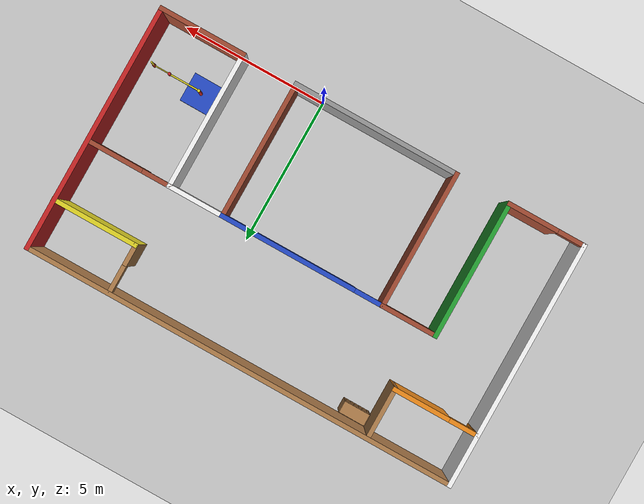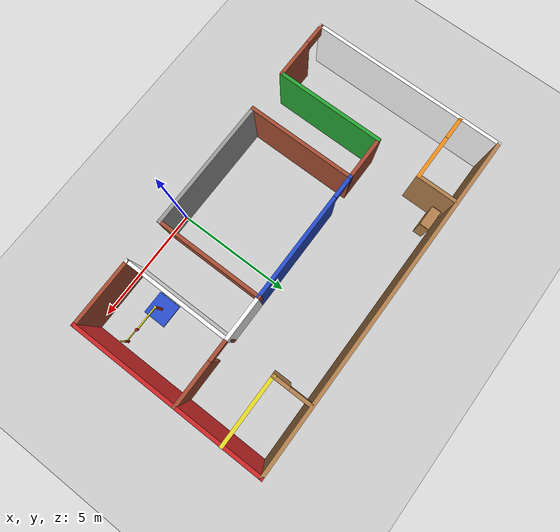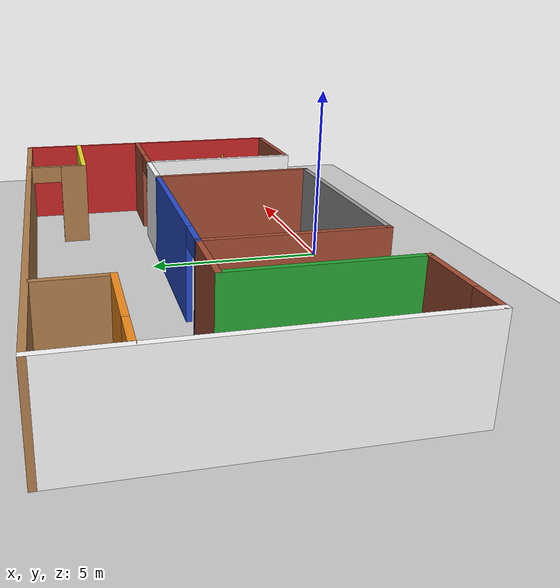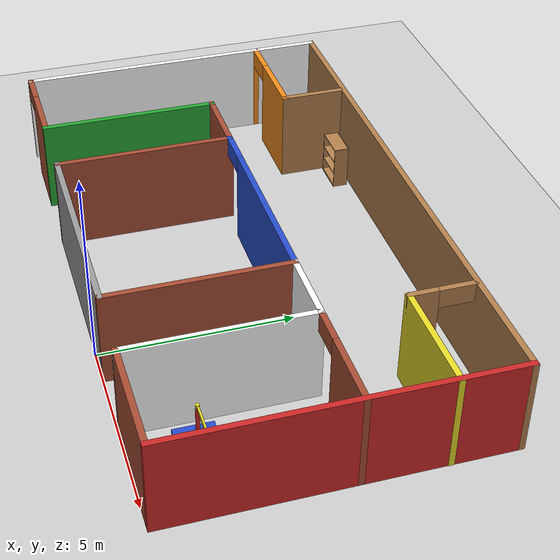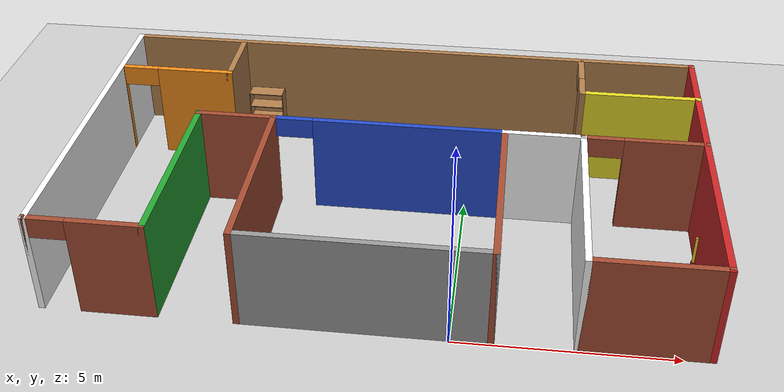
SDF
<sdf version="1.6">
 <world name="default">
  <light name="sun" type="directional">
   <pose>0 0 10 0 -0 0</pose>
   <diffuse>0.8 0.8 0.8 1</diffuse>
   <specular>0.2 0.2 0.2 1</specular>
   <attenuation>
    <range>1000</range>
    <constant>0.9</constant>
    <linear>0.01</linear>
    <quadratic>0.001</quadratic>
   </attenuation>
   <direction>-0.5 0.1 -0.9</direction>
  </light>
  <model name="ground_plane">
   <static>1</static>
   <link name="link">
    <collision name="collision">
     <geometry><plane><normal>0 0 1</normal><size>100 100</size></plane></geometry>
     <surface>
      <contact><collide_bitmask>65535</collide_bitmask></contact>
      <friction><ode><mu>100</mu><mu2>50</mu2></ode></friction>
     </surface>
    </collision>
    <visual name="visual">
     <cast_shadows>0</cast_shadows>
     <geometry><plane><normal>0 0 1</normal><size>100 100</size></plane></geometry>
     <material>
      <script><uri>file://media/materials/scripts/gazebo.material</uri><name>Gazebo/Grey</name></script>
     </material>
    </visual>
   </link>
  </model>
  <gravity>0 0 -9.8</gravity>
  <magnetic_field>6e-06 2.3e-05 -4.2e-05</magnetic_field>
  <atmosphere type="adiabatic"/>
  <physics name="default_physics" default="0" type="ode">
   <max_step_size>0.001</max_step_size>
   <real_time_factor>1</real_time_factor>
   <real_time_update_rate>1000</real_time_update_rate>
  </physics>
  <scene><ambient>0.4 0.4 0.4 1</ambient><background>0.7 0.7 0.7 1</background><shadows>1</shadows></scene>
  <spherical_coordinates>
   <surface_model>EARTH_WGS84</surface_model>
   <latitude_deg>0</latitude_deg>
   <longitude_deg>0</longitude_deg>
   <elevation>0</elevation>
   <heading_deg>0</heading_deg>
  </spherical_coordinates>
  <model name="mybuilding2">
   <pose>-1.76364 4.25644 0 0 -0 0</pose>
   <link name="Wall_1">
    <collision name="Wall_1_Collision">
     <geometry><box><size>8.5 0.15 2.5</size></box></geometry>
     <pose>0 0 1.25 0 -0 0</pose>
    </collision>
    <visual name="Wall_1_Visual">
     <pose>0 0 1.25 0 -0 0</pose>
     <geometry><box><size>8.5 0.15 2.5</size></box></geometry>
     <material>
      <script><uri>file://media/materials/scripts/gazebo.material</uri><name>Gazebo/Tiles</name></script>
      <ambient>1 1 1 1</ambient>
     </material>
     <meta><layer>0</layer></meta>
    </visual>
    <pose>-7.37922 0 0 0 0 -1.5708</pose>
   </link>
   <link name="Wall_10">
    <collision name="Wall_10_Collision">
     <geometry><box><size>3 0.15 2.5</size></box></geometry>
     <pose>0 0 1.25 0 -0 0</pose>
    </collision>
    <visual name="Wall_10_Visual">
     <pose>0 0 1.25 0 -0 0</pose>
     <geometry><box><size>3 0.15 2.5</size></box></geometry>
     <material>
      <script><uri>file://media/materials/scripts/gazebo.material</uri><name>Gazebo/Bricks</name></script>
      <ambient>1 1 1 1</ambient>
     </material>
     <meta><layer>0</layer></meta>
    </visual>
    <pose>5.94578 -4.175 0 0 -0 0</pose>
   </link>
   <link name="Wall_11">
    <collision name="Wall_11_Collision">
     <geometry><box><size>8.5 0.15 2.5</size></box></geometry>
     <pose>0 0 1.25 0 -0 0</pose>
    </collision>
    <visual name="Wall_11_Visual">
     <pose>0 0 1.25 0 -0 0</pose>
     <geometry><box><size>8.5 0.15 2.5</size></box></geometry>
     <material>
      <script><uri>file://media/materials/scripts/gazebo.material</uri><name>Gazebo/Red</name></script>
      <ambient>1 1 1 1</ambient>
     </material>
     <meta><layer>0</layer></meta>
    </visual>
    <pose>7.37078 0 0 0 -0 1.5708</pose>
   </link>
   <link name="Wall_12">
    <collision name="Wall_12_Collision">
     <geometry><box><size>14.9 0.15 2.5</size></box></geometry>
     <pose>0 0 1.25 0 -0 0</pose>
    </collision>
    <visual name="Wall_12_Visual">
     <pose>0 0 1.25 0 -0 0</pose>
     <geometry><box><size>14.9 0.15 2.5</size></box></geometry>
     <material>
      <script><uri>file://media/materials/scripts/gazebo.material</uri><name>Gazebo/Wood</name></script>
      <ambient>1 1 1 1</ambient>
     </material>
     <meta><layer>0</layer></meta>
    </visual>
    <pose>-0.004225 4.175 0 0 -0 3.14159</pose>
   </link>
   <link name="Wall_14">
    <pose>-5.92381 2.45641 0 0 -0 0</pose>
    <visual name="Wall_14_Visual_0">
     <pose>-1.43656 0 1.25 0 -0 0</pose>
     <geometry><box><size>0.126889 0.15 2.5</size></box></geometry>
     <material>
      <script><uri>file://media/materials/scripts/gazebo.material</uri><name>Gazebo/Orange</name></script>
      <ambient>1 1 1 1</ambient>
     </material>
     <meta><layer>0</layer></meta>
    </visual>
    <collision name="Wall_14_Collision_0">
     <geometry><box><size>0.126889 0.15 2.5</size></box></geometry>
     <pose>-1.43656 0 1.25 0 -0 0</pose>
    </collision>
    <visual name="Wall_14_Visual_1">
     <pose>0.513445 0 1.25 0 -0 0</pose>
     <geometry><box><size>1.97311 0.15 2.5</size></box></geometry>
     <material>
      <script><uri>file://media/materials/scripts/gazebo.material</uri><name>Gazebo/Orange</name></script>
      <ambient>1 1 1 1</ambient>
     </material>
     <meta><layer>0</layer></meta>
    </visual>
    <collision name="Wall_14_Collision_1">
     <geometry><box><size>1.97311 0.15 2.5</size></box></geometry>
     <pose>0.513445 0 1.25 0 -0 0</pose>
    </collision>
    <visual name="Wall_14_Visual_2">
     <pose>-0.923111 0 2.25 0 -0 0</pose>
     <geometry><box><size>0.9 0.15 0.5</size></box></geometry>
     <material>
      <script><uri>file://media/materials/scripts/gazebo.material</uri><name>Gazebo/Orange</name></script>
      <ambient>1 1 1 1</ambient>
     </material>
     <meta><layer>0</layer></meta>
    </visual>
    <collision name="Wall_14_Collision_2">
     <geometry><box><size>0.9 0.15 0.5</size></box></geometry>
     <pose>-0.923111 0 2.25 0 -0 0</pose>
    </collision>
   </link>
   <link name="Wall_15">
    <collision name="Wall_15_Collision">
     <geometry><box><size>1.75 0.15 2.5</size></box></geometry>
     <pose>0 0 1.25 0 -0 0</pose>
    </collision>
    <visual name="Wall_15_Visual">
     <pose>0 0 1.25 0 -0 0</pose>
     <geometry><box><size>1.75 0.15 2.5</size></box></geometry>
     <material>
      <script><uri>file://media/materials/scripts/gazebo.material</uri><name>Gazebo/Wood</name></script>
      <ambient>1 1 1 1</ambient>
     </material>
     <meta><layer>0</layer></meta>
    </visual>
    <pose>-4.49881 3.25641 0 0 -0 1.5708</pose>
   </link>
   <link name="Wall_17">
    <pose>-0.129225 0.425 0 0 -0 0</pose>
    <visual name="Wall_17_Visual_0">
     <pose>-2.80087 0 1.25 0 -0 0</pose>
     <geometry><box><size>0.148262 0.15 2.5</size></box></geometry>
     <material>
      <script><uri>file://media/materials/scripts/gazebo.material</uri><name>Gazebo/Blue</name></script>
      <ambient>1 1 1 1</ambient>
     </material>
     <meta><layer>0</layer></meta>
    </visual>
    <collision name="Wall_17_Collision_0">
     <geometry><box><size>0.148262 0.15 2.5</size></box></geometry>
     <pose>-2.80087 0 1.25 0 -0 0</pose>
    </collision>
    <visual name="Wall_17_Visual_1">
     <pose>0.524131 0 1.25 0 -0 0</pose>
     <geometry><box><size>4.70174 0.15 2.5</size></box></geometry>
     <material>
      <script><uri>file://media/materials/scripts/gazebo.material</uri><name>Gazebo/Blue</name></script>
      <ambient>1 1 1 1</ambient>
     </material>
     <meta><layer>0</layer></meta>
    </visual>
    <collision name="Wall_17_Collision_1">
     <geometry><box><size>4.70174 0.15 2.5</size></box></geometry>
     <pose>0.524131 0 1.25 0 -0 0</pose>
    </collision>
    <visual name="Wall_17_Visual_2">
     <pose>-2.27674 0 2.25 0 -0 0</pose>
     <geometry><box><size>0.9 0.15 0.5</size></box></geometry>
     <material>
      <script><uri>file://media/materials/scripts/gazebo.material</uri><name>Gazebo/Blue</name></script>
      <ambient>1 1 1 1</ambient>
     </material>
     <meta><layer>0</layer></meta>
    </visual>
    <collision name="Wall_17_Collision_2">
     <geometry><box><size>0.9 0.15 0.5</size></box></geometry>
     <pose>-2.27674 0 2.25 0 -0 0</pose>
    </collision>
   </link>
   <link name="Wall_19">
    <pose>5.94578 0.425 0 0 -0 0</pose>
    <visual name="Wall_19_Visual_0">
     <pose>-1.43993 0 1.25 0 -0 0</pose>
     <geometry><box><size>0.120131 0.15 2.5</size></box></geometry>
     <material>
      <script><uri>file://media/materials/scripts/gazebo.material</uri><name>Gazebo/Bricks</name></script>
      <ambient>1 1 1 1</ambient>
     </material>
     <meta><layer>0</layer></meta>
    </visual>
    <collision name="Wall_19_Collision_0">
     <geometry><box><size>0.120131 0.15 2.5</size></box></geometry>
     <pose>-1.43993 0 1.25 0 -0 0</pose>
    </collision>
    <visual name="Wall_19_Visual_1">
     <pose>0.510066 0 1.25 0 -0 0</pose>
     <geometry><box><size>1.97987 0.15 2.5</size></box></geometry>
     <material>
      <script><uri>file://media/materials/scripts/gazebo.material</uri><name>Gazebo/Bricks</name></script>
      <ambient>1 1 1 1</ambient>
     </material>
     <meta><layer>0</layer></meta>
    </visual>
    <collision name="Wall_19_Collision_1">
     <geometry><box><size>1.97987 0.15 2.5</size></box></geometry>
     <pose>0.510066 0 1.25 0 -0 0</pose>
    </collision>
    <visual name="Wall_19_Visual_2">
     <pose>-0.929869 0 2.25 0 -0 0</pose>
     <geometry><box><size>0.9 0.15 0.5</size></box></geometry>
     <material>
      <script><uri>file://media/materials/scripts/gazebo.material</uri><name>Gazebo/Bricks</name></script>
      <ambient>1 1 1 1</ambient>
     </material>
     <meta><layer>0</layer></meta>
    </visual>
    <collision name="Wall_19_Collision_2">
     <geometry><box><size>0.9 0.15 0.5</size></box></geometry>
     <pose>-0.929869 0 2.25 0 -0 0</pose>
    </collision>
   </link>
   <link name="Wall_2">
    <pose>-6.07923 -4.175 0 0 -0 0</pose>
    <visual name="Wall_2_Visual_0">
     <pose>-1.33437 0 1.25 0 -0 0</pose>
     <geometry><box><size>0.081262 0.15 2.5</size></box></geometry>
     <material>
      <script><uri>file://media/materials/scripts/gazebo.material</uri><name>Gazebo/Bricks</name></script>
      <ambient>1 1 1 1</ambient>
     </material>
     <meta><layer>0</layer></meta>
    </visual>
    <collision name="Wall_2_Collision_0">
     <geometry><box><size>0.081262 0.15 2.5</size></box></geometry>
     <pose>-1.33437 0 1.25 0 -0 0</pose>
    </collision>
    <visual name="Wall_2_Visual_1">
     <pose>0.490631 0 1.25 0 -0 0</pose>
     <geometry><box><size>1.76874 0.15 2.5</size></box></geometry>
     <material>
      <script><uri>file://media/materials/scripts/gazebo.material</uri><name>Gazebo/Bricks</name></script>
      <ambient>1 1 1 1</ambient>
     </material>
     <meta><layer>0</layer></meta>
    </visual>
    <collision name="Wall_2_Collision_1">
     <geometry><box><size>1.76874 0.15 2.5</size></box></geometry>
     <pose>0.490631 0 1.25 0 -0 0</pose>
    </collision>
    <visual name="Wall_2_Visual_2">
     <pose>-0.843738 0 2.25 0 -0 0</pose>
     <geometry><box><size>0.9 0.15 0.5</size></box></geometry>
     <material>
      <script><uri>file://media/materials/scripts/gazebo.material</uri><name>Gazebo/Bricks</name></script>
      <ambient>1 1 1 1</ambient>
     </material>
     <meta><layer>0</layer></meta>
    </visual>
    <collision name="Wall_2_Collision_2">
     <geometry><box><size>0.9 0.15 0.5</size></box></geometry>
     <pose>-0.843738 0 2.25 0 -0 0</pose>
    </collision>
   </link>
   <link name="Wall_21">
    <pose>4.52923 3.29896 0 0 0 -1.5708</pose>
    <visual name="Wall_21_Visual_0">
     <pose>-0.841973 0 1.25 0 -0 0</pose>
     <geometry><box><size>0.066054 0.15 2.5</size></box></geometry>
     <material>
      <script><uri>file://media/materials/scripts/gazebo.material</uri><name>Gazebo/Wood</name></script>
      <ambient>1 1 1 1</ambient>
     </material>
     <meta><layer>0</layer></meta>
    </visual>
    <collision name="Wall_21_Collision_0">
     <geometry><box><size>0.066054 0.15 2.5</size></box></geometry>
     <pose>-0.841973 0 1.25 0 -0 0</pose>
    </collision>
    <visual name="Wall_21_Visual_1">
     <pose>0.483027 0 1.25 0 -0 0</pose>
     <geometry><box><size>0.783946 0.15 2.5</size></box></geometry>
     <material>
      <script><uri>file://media/materials/scripts/gazebo.material</uri><name>Gazebo/Wood</name></script>
      <ambient>1 1 1 1</ambient>
     </material>
     <meta><layer>0</layer></meta>
    </visual>
    <collision name="Wall_21_Collision_1">
     <geometry><box><size>0.783946 0.15 2.5</size></box></geometry>
     <pose>0.483027 0 1.25 0 -0 0</pose>
    </collision>
    <visual name="Wall_21_Visual_2">
     <pose>-0.358946 0 2.25 0 -0 0</pose>
     <geometry><box><size>0.9 0.15 0.5</size></box></geometry>
     <material>
      <script><uri>file://media/materials/scripts/gazebo.material</uri><name>Gazebo/Wood</name></script>
      <ambient>1 1 1 1</ambient>
     </material>
     <meta><layer>0</layer></meta>
    </visual>
    <collision name="Wall_21_Collision_2">
     <geometry><box><size>0.9 0.15 0.5</size></box></geometry>
     <pose>-0.358946 0 2.25 0 -0 0</pose>
    </collision>
   </link>
   <link name="Wall_22">
    <collision name="Wall_22_Collision">
     <geometry><box><size>3 0.15 2.5</size></box></geometry>
     <pose>0 0 1.25 0 -0 0</pose>
    </collision>
    <visual name="Wall_22_Visual">
     <pose>0 0 1.25 0 -0 0</pose>
     <geometry><box><size>3 0.15 2.5</size></box></geometry>
     <material>
      <script><uri>file://media/materials/scripts/gazebo.material</uri><name>Gazebo/Yellow</name></script>
      <ambient>1 1 1 1</ambient>
     </material>
     <meta><layer>0</layer></meta>
    </visual>
    <pose>5.95423 2.49896 0 0 -0 0</pose>
   </link>
   <link name="Wall_3">
    <collision name="Wall_3_Collision">
     <geometry><box><size>4.75 0.15 2.5</size></box></geometry>
     <pose>0 0 1.25 0 -0 0</pose>
    </collision>
    <visual name="Wall_3_Visual">
     <pose>0 0 1.25 0 -0 0</pose>
     <geometry><box><size>4.75 0.15 2.5</size></box></geometry>
     <material>
      <script><uri>file://media/materials/scripts/gazebo.material</uri><name>Gazebo/Green</name></script>
      <ambient>1 1 1 1</ambient>
     </material>
     <meta><layer>0</layer></meta>
    </visual>
    <pose>-4.77923 -1.875 0 0 -0 1.5708</pose>
   </link>
   <link name="Wall_4">
    <collision name="Wall_4_Collision">
     <geometry><box><size>2 0.15 2.5</size></box></geometry>
     <pose>0 0 1.25 0 -0 0</pose>
    </collision>
    <visual name="Wall_4_Visual">
     <pose>0 0 1.25 0 -0 0</pose>
     <geometry><box><size>2 0.15 2.5</size></box></geometry>
     <material>
      <script><uri>file://media/materials/scripts/gazebo.material</uri><name>Gazebo/Bricks</name></script>
      <ambient>1 1 1 1</ambient>
     </material>
     <meta><layer>0</layer></meta>
    </visual>
    <pose>-3.85423 0.425 0 0 -0 0</pose>
   </link>
   <link name="Wall_5">
    <collision name="Wall_5_Collision">
     <geometry><box><size>4.75 0.15 2.5</size></box></geometry>
     <pose>0 0 1.25 0 -0 0</pose>
    </collision>
    <visual name="Wall_5_Visual">
     <pose>0 0 1.25 0 -0 0</pose>
     <geometry><box><size>4.75 0.15 2.5</size></box></geometry>
     <material>
      <script><uri>file://media/materials/scripts/gazebo.material</uri><name>Gazebo/Bricks</name></script>
      <ambient>1 1 1 1</ambient>
     </material>
     <meta><layer>0</layer></meta>
    </visual>
    <pose>-2.92923 -1.875 0 0 0 -1.5708</pose>
   </link>
   <link name="Wall_6">
    <collision name="Wall_6_Collision">
     <geometry><box><size>5.75 0.15 2.5</size></box></geometry>
     <pose>0 0 1.25 0 -0 0</pose>
    </collision>
    <visual name="Wall_6_Visual">
     <pose>0 0 1.25 0 -0 0</pose>
     <geometry><box><size>5.75 0.15 2.5</size></box></geometry>
     <material>
      <script><uri>file://media/materials/scripts/gazebo.material</uri><name>Gazebo/Grey</name></script>
      <ambient>1 1 1 1</ambient>
     </material>
     <meta><layer>0</layer></meta>
    </visual>
    <pose>-0.129225 -4.175 0 0 -0 0</pose>
   </link>
   <link name="Wall_7">
    <collision name="Wall_7_Collision">
     <geometry><box><size>4.75 0.15 2.5</size></box></geometry>
     <pose>0 0 1.25 0 -0 0</pose>
    </collision>
    <visual name="Wall_7_Visual">
     <pose>0 0 1.25 0 -0 0</pose>
     <geometry><box><size>4.75 0.15 2.5</size></box></geometry>
     <material>
      <script><uri>file://media/materials/scripts/gazebo.material</uri><name>Gazebo/Bricks</name></script>
      <ambient>1 1 1 1</ambient>
     </material>
     <meta><layer>0</layer></meta>
    </visual>
    <pose>2.67077 -1.875 0 0 -0 1.5708</pose>
   </link>
   <link name="Wall_8">
    <collision name="Wall_8_Collision">
     <geometry><box><size>2 0.15 2.5</size></box></geometry>
     <pose>0 0 1.25 0 -0 0</pose>
    </collision>
    <visual name="Wall_8_Visual">
     <pose>0 0 1.25 0 -0 0</pose>
     <geometry><box><size>2 0.15 2.5</size></box></geometry>
     <material>
      <script><uri>file://media/materials/scripts/gazebo.material</uri><name>Gazebo/Tiles</name></script>
      <ambient>1 1 1 1</ambient>
     </material>
     <meta><layer>0</layer></meta>
    </visual>
    <pose>3.59578 0.425 0 0 -0 0</pose>
   </link>
   <link name="Wall_9">
    <collision name="Wall_9_Collision">
     <geometry><box><size>4.75 0.15 2.5</size></box></geometry>
     <pose>0 0 1.25 0 -0 0</pose>
    </collision>
    <visual name="Wall_9_Visual">
     <pose>0 0 1.25 0 -0 0</pose>
     <geometry><box><size>4.75 0.15 2.5</size></box></geometry>
     <material>
      <script><uri>file://media/materials/scripts/gazebo.material</uri><name>Gazebo/Tiles</name></script>
      <ambient>1 1 1 1</ambient>
     </material>
     <meta><layer>0</layer></meta>
    </visual>
    <pose>4.52078 -1.875 0 0 0 -1.5708</pose>
   </link>
   <static>1</static>
  </model>
  <model name="bookshelf">
   <static>1</static>
   <link name="link">
    <inertial><mass>1</mass></inertial>
    <collision name="back">
     <pose>0 0.005 0.6 0 -0 0</pose>
     <geometry><box><size>0.9 0.01 1.2</size></box></geometry>
    </collision>
    <visual name="visual1">
     <pose>0 0.005 0.6 0 -0 0</pose>
     <geometry><box><size>0.9 0.01 1.2</size></box></geometry>
     <material>
      <script><uri>file://media/materials/scripts/gazebo.material</uri><name>Gazebo/Wood</name></script>
     </material>
    </visual>
    <collision name="left_side">
     <pose>0.45 -0.195 0.6 0 -0 0</pose>
     <geometry><box><size>0.02 0.4 1.2</size></box></geometry>
    </collision>
    <visual name="visual2">
     <pose>0.45 -0.195 0.6 0 -0 0</pose>
     <geometry><box><size>0.02 0.4 1.2</size></box></geometry>
     <material>
      <script><uri>file://media/materials/scripts/gazebo.material</uri><name>Gazebo/Wood</name></script>
     </material>
    </visual>
    <collision name="right_side">
     <pose>-0.45 -0.195 0.6 0 -0 0</pose>
     <geometry><box><size>0.02 0.4 1.2</size></box></geometry>
    </collision>
    <visual name="visual3">
     <pose>-0.45 -0.195 0.6 0 -0 0</pose>
     <geometry><box><size>0.02 0.4 1.2</size></box></geometry>
     <material>
      <script><uri>file://media/materials/scripts/gazebo.material</uri><name>Gazebo/Wood</name></script>
     </material>
    </visual>
    <collision name="bottom">
     <pose>0 -0.195 0.03 0 -0 0</pose>
     <geometry><box><size>0.88 0.4 0.06</size></box></geometry>
    </collision>
    <visual name="visual4">
     <pose>0 -0.195 0.03 0 -0 0</pose>
     <geometry><box><size>0.88 0.4 0.06</size></box></geometry>
     <material>
      <script><uri>file://media/materials/scripts/gazebo.material</uri><name>Gazebo/Wood</name></script>
     </material>
    </visual>
    <collision name="top">
     <pose>0 -0.195 1.19 0 -0 0</pose>
     <geometry><box><size>0.88 0.4 0.02</size></box></geometry>
    </collision>
    <visual name="visual5">
     <pose>0 -0.195 1.19 0 -0 0</pose>
     <geometry><box><size>0.88 0.4 0.02</size></box></geometry>
     <material>
      <script><uri>file://media/materials/scripts/gazebo.material</uri><name>Gazebo/Wood</name></script>
     </material>
    </visual>
    <collision name="low_shelf">
     <pose>0 -0.195 0.43 0 -0 0</pose>
     <geometry><box><size>0.88 0.4 0.02</size></box></geometry>
    </collision>
    <visual name="visual6">
     <pose>0 -0.195 0.43 0 -0 0</pose>
     <geometry><box><size>0.88 0.4 0.02</size></box></geometry>
     <material>
      <script><uri>file://media/materials/scripts/gazebo.material</uri><name>Gazebo/Wood</name></script>
     </material>
    </visual>
    <collision name="high_shelf">
     <pose>0 -0.195 0.8 0 -0 0</pose>
     <geometry><box><size>0.88 0.4 0.02</size></box></geometry>
    </collision>
    <visual name="visual7">
     <pose>0 -0.195 0.8 0 -0 0</pose>
     <geometry><box><size>0.88 0.4 0.02</size></box></geometry>
     <material>
      <script><uri>file://media/materials/scripts/gazebo.material</uri><name>Gazebo/Wood</name></script>
     </material>
    </visual>
   </link>
   <pose>-5.64612 8.25094 0 0 -0 0</pose>
  </model>
  <plugin name="collision_map_creator" filename="libcollision_map_creator.so"/>
  <model name="simple_arm">
   <link name="arm_base">
    <inertial>
     <pose>0 0 0.00099 0 -0 0</pose>
     <inertia><ixx>1.11</ixx><ixy>0</ixy><ixz>0</ixz><iyy>100.11</iyy><iyz>0</iyz><izz>1.01</izz></inertia>
     <mass>101</mass>
    </inertial>
    <collision name="arm_base_geom">
     <pose>0 0 0.05 0 -0 0</pose>
     <geometry><box><size>1 1 0.1</size></box></geometry>
    </collision>
    <visual name="arm_base_geom_visual">
     <pose>0 0 0.05 0 -0 0</pose>
     <geometry><box><size>1 1 0.1</size></box></geometry>
     <material>
      <script><uri>file://media/materials/scripts/gazebo.material</uri><name>Gazebo/Blue</name></script>
     </material>
    </visual>
    <collision name="arm_base_geom_arm_trunk">
     <pose>0 0 0.6 0 -0 0</pose>
     <geometry><cylinder><radius>0.05</radius><length>1</length></cylinder></geometry>
    </collision>
    <visual name="arm_base_geom_arm_trunk_visual">
     <pose>0 0 0.6 0 -0 0</pose>
     <geometry><cylinder><radius>0.05</radius><length>1</length></cylinder></geometry>
     <material>
      <script><uri>file://media/materials/scripts/gazebo.material</uri><name>Gazebo/Red</name></script>
     </material>
    </visual>
   </link>
   <link name="arm_shoulder_pan">
    <pose>0 0 1.1 0 -0 0</pose>
    <inertial>
     <pose>0.045455 0 0 0 -0 0</pose>
     <inertia><ixx>0.011</ixx><ixy>0</ixy><ixz>0</ixz><iyy>0.0225</iyy><iyz>0</iyz><izz>0.0135</izz></inertia>
     <mass>1.1</mass>
    </inertial>
    <collision name="arm_shoulder_pan_geom">
     <pose>0 0 0.05 0 -0 0</pose>
     <geometry><cylinder><radius>0.05</radius><length>0.1</length></cylinder></geometry>
    </collision>
    <visual name="arm_shoulder_pan_geom_visual">
     <pose>0 0 0.05 0 -0 0</pose>
     <geometry><cylinder><radius>0.05</radius><length>0.1</length></cylinder></geometry>
     <material>
      <script><uri>file://media/materials/scripts/gazebo.material</uri><name>Gazebo/Yellow</name></script>
     </material>
    </visual>
    <collision name="arm_shoulder_pan_geom_arm_shoulder">
     <pose>0.55 0 0.05 0 -0 0</pose>
     <geometry><box><size>1 0.05 0.1</size></box></geometry>
    </collision>
    <visual name="arm_shoulder_pan_geom_arm_shoulder_visual">
     <pose>0.55 0 0.05 0 -0 0</pose>
     <geometry><box><size>1 0.05 0.1</size></box></geometry>
     <material>
      <script><uri>file://media/materials/scripts/gazebo.material</uri><name>Gazebo/Yellow</name></script>
     </material>
    </visual>
   </link>
   <link name="arm_elbow_pan">
    <pose>1.05 0 1.1 0 -0 0</pose>
    <inertial>
     <pose>0.0875 0 0.083333 0 -0 0</pose>
     <inertia>
      <ixx>0.031</ixx>
      <ixy>0</ixy>
      <ixz>0.005</ixz>
      <iyy>0.07275</iyy>
      <iyz>0</iyz>
      <izz>0.04475</izz>
     </inertia>
     <mass>1.2</mass>
    </inertial>
    <collision name="arm_elbow_pan_geom">
     <pose>0 0 0.1 0 -0 0</pose>
     <geometry><cylinder><radius>0.05</radius><length>0.2</length></cylinder></geometry>
    </collision>
    <visual name="arm_elbow_pan_geom_visual">
     <pose>0 0 0.1 0 -0 0</pose>
     <geometry><cylinder><radius>0.05</radius><length>0.2</length></cylinder></geometry>
     <material>
      <script><uri>file://media/materials/scripts/gazebo.material</uri><name>Gazebo/Red</name></script>
     </material>
    </visual>
    <collision name="arm_elbow_pan_geom_arm_elbow">
     <pose>0.3 0 0.15 0 -0 0</pose>
     <geometry><box><size>0.5 0.03 0.1</size></box></geometry>
    </collision>
    <visual name="arm_elbow_pan_geom_arm_elbow_visual">
     <pose>0.3 0 0.15 0 -0 0</pose>
     <geometry><box><size>0.5 0.03 0.1</size></box></geometry>
     <material>
      <script><uri>file://media/materials/scripts/gazebo.material</uri><name>Gazebo/Yellow</name></script>
     </material>
    </visual>
    <collision name="arm_elbow_pan_geom_arm_wrist">
     <pose>0.55 0 0.15 0 -0 0</pose>
     <geometry><cylinder><radius>0.05</radius><length>0.3</length></cylinder></geometry>
    </collision>
    <visual name="arm_elbow_pan_geom_arm_wrist_visual">
     <pose>0.55 0 0.15 0 -0 0</pose>
     <geometry><cylinder><radius>0.05</radius><length>0.3</length></cylinder></geometry>
     <material>
      <script><uri>file://media/materials/scripts/gazebo.material</uri><name>Gazebo/Red</name></script>
     </material>
    </visual>
   </link>
   <link name="arm_wrist_lift">
    <pose>1.6 0 1.05 0 -0 0</pose>
    <inertial>
     <inertia><ixx>0.01</ixx><ixy>0</ixy><ixz>0</ixz><iyy>0.01</iyy><iyz>0</iyz><izz>0.001</izz></inertia>
     <mass>0.1</mass>
    </inertial>
    <collision name="arm_wrist_lift_geom">
     <pose>0 0 0.5 0 -0 0</pose>
     <geometry><cylinder><radius>0.03</radius><length>1</length></cylinder></geometry>
    </collision>
    <visual name="arm_wrist_lift_geom_visual">
     <pose>0 0 0.5 0 -0 0</pose>
     <geometry><cylinder><radius>0.03</radius><length>1</length></cylinder></geometry>
     <material>
      <script><uri>file://media/materials/scripts/gazebo.material</uri><name>Gazebo/Yellow</name></script>
     </material>
    </visual>
   </link>
   <link name="arm_wrist_roll">
    <pose>1.6 0 1 0 -0 0</pose>
    <inertial>
     <inertia><ixx>0.01</ixx><ixy>0</ixy><ixz>0</ixz><iyy>0.01</iyy><iyz>0</iyz><izz>0.001</izz></inertia>
     <mass>0.1</mass>
    </inertial>
    <collision name="arm_wrist_roll_geom">
     <pose>0 0 0.025 0 -0 0</pose>
     <geometry><cylinder><radius>0.05</radius><length>0.05</length></cylinder></geometry>
    </collision>
    <visual name="arm_wrist_roll_geom_visual">
     <pose>0 0 0.025 0 -0 0</pose>
     <geometry><cylinder><radius>0.05</radius><length>0.05</length></cylinder></geometry>
     <material>
      <script><uri>file://media/materials/scripts/gazebo.material</uri><name>Gazebo/Red</name></script>
     </material>
    </visual>
   </link>
   <joint name="arm_shoulder_pan_joint" type="revolute">
    <parent>arm_base</parent>
    <child>arm_shoulder_pan</child>
    <axis>
     <dynamics>
      <damping>1</damping>
      <friction>0</friction>
      <spring_reference>0</spring_reference>
      <spring_stiffness>0</spring_stiffness>
     </dynamics>
     <xyz>0 0 1</xyz>
     <use_parent_model_frame>1</use_parent_model_frame>
     <limit><lower>-1e+16</lower><upper>1e+16</upper></limit>
    </axis>
   </joint>
   <joint name="arm_elbow_pan_joint" type="revolute">
    <parent>arm_shoulder_pan</parent>
    <child>arm_elbow_pan</child>
    <axis>
     <dynamics>
      <damping>1</damping>
      <friction>0</friction>
      <spring_reference>0</spring_reference>
      <spring_stiffness>0</spring_stiffness>
     </dynamics>
     <xyz>0 0 1</xyz>
     <use_parent_model_frame>1</use_parent_model_frame>
     <limit><lower>-1e+16</lower><upper>1e+16</upper></limit>
    </axis>
   </joint>
   <joint name="arm_wrist_lift_joint" type="prismatic">
    <parent>arm_elbow_pan</parent>
    <child>arm_wrist_lift</child>
    <axis>
     <dynamics>
      <damping>1</damping>
      <friction>0</friction>
      <spring_reference>0</spring_reference>
      <spring_stiffness>0</spring_stiffness>
     </dynamics>
     <limit><lower>-0.8</lower><upper>0.1</upper></limit>
     <xyz>0 0 1</xyz>
     <use_parent_model_frame>1</use_parent_model_frame>
    </axis>
   </joint>
   <joint name="arm_wrist_roll_joint" type="revolute">
    <parent>arm_wrist_lift</parent>
    <child>arm_wrist_roll</child>
    <axis>
     <dynamics>
      <damping>1</damping>
      <friction>0</friction>
      <spring_reference>0</spring_reference>
      <spring_stiffness>0</spring_stiffness>
     </dynamics>
     <limit><lower>-2.99999</lower><upper>2.99999</upper></limit>
     <xyz>0 0 1</xyz>
     <use_parent_model_frame>1</use_parent_model_frame>
    </axis>
   </joint>
   <pose>3.53337 1.64135 0 0 0 -0.005385</pose>
  </model>
 </world>
</sdf>
